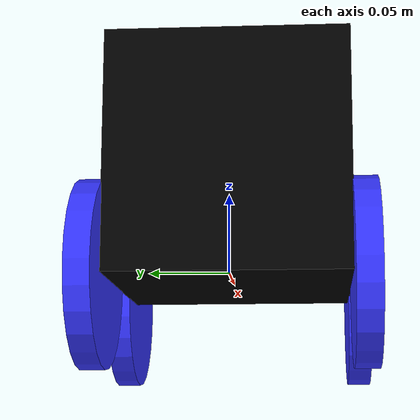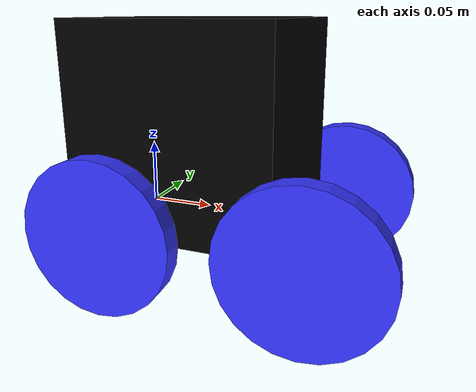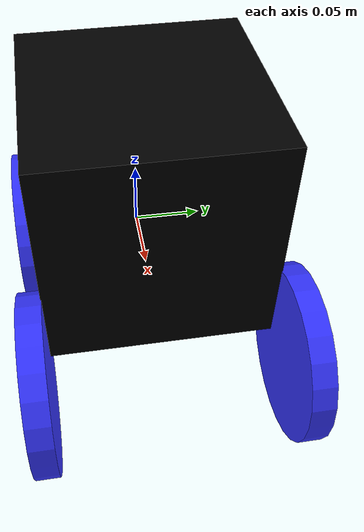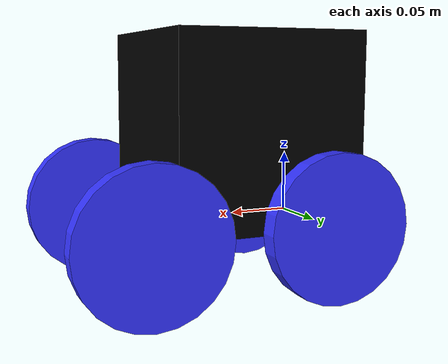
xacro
<?xml version="1.0"?>
<robot xmlns:xacro="http://www.ros.org/wiki/xacro">

    <xacro:include filename="inertial_macros.xacro"/>

    <material name="white">
        <color rgba="1 1 1 1"/>
    </material>

    <material name="orange">
        <color rgba="1 0.3 0.1 1"/>
    </material>

    <material name="blue">
        <color rgba="0.2 0.2 1 1"/>
    </material>

    <material name="black">
        <color rgba="0 0 0 1"/>
    </material>

<!-- BASE LINK -->

    <link name="base_link">

    </link>

<!-- CHASSIS LINK -->

    <joint name="chassis_joint" type="fixed">
        <parent link="base_link"/>
        <child link="chassis"/>
        <origin xyz="0.05 0 0"/>
    </joint>

    <link name="chassis">
        <visual>
            <origin xyz="0 0 0.075"/>
            <geometry>
                <box size="0.155 0.155 0.155"/>
            </geometry>
            <material name="black"/>
        </visual>
        <collision>
            <origin xyz="0 0 0.075"/>
            <geometry>
                <box size="0.155 0.155 0.155"/>
            </geometry>
        </collision>
        <xacro:inertial_box mass="0.5" x="0.3" y="0.3" z="0.15">
            <origin xyz="0.15 0 0.075" rpy="0 0 0"/>
        </xacro:inertial_box>
    </link>

    <!-- LEFT DRIVE WHEEL LINK -->

    <joint name="left_drive_wheel_joint" type="continuous">
        <parent link="base_link"/>
        <child link="left_drive_wheel"/>
        <origin xyz="0 0.085 0" rpy="-${pi/2} 0 0"/>
        <axis xyz="0 0 1"/>
    </joint>

    <link name="left_drive_wheel">
        <visual>
            <geometry>
                <cylinder radius="0.06" length="0.016"/>
            </geometry>
            <material name="blue"/>
        </visual>
        <collision>
            <geometry>
                <cylinder radius="0.06" length="0.016"/>
            </geometry>
        </collision>
        <xacro:inertial_cylinder mass="0.1" length="0.016" radius="0.06">
            <origin xyz="0 0 0" rpy="0 0 0"/>
        </xacro:inertial_cylinder>
    </link>

    <!-- RIGHT DRIVE WHEEL LINK-->

    <joint name="right_drive_wheel_joint" type="continuous">
        <parent link="base_link"/>
        <child link="right_drive_wheel"/>
        <origin xyz="0 -0.085 0" rpy="${pi/2} 0 0"/>
        <axis xyz="0 0 -1"/>
    </joint>

    <link name="right_drive_wheel">
        <visual>
            <geometry>
                <cylinder radius="0.06" length="0.016"/>
            </geometry>
            <material name="blue"/>
        </visual>
        <collision>
            <geometry>
                <cylinder radius="0.06" length="0.016"/>
            </geometry>
        </collision>
        <xacro:inertial_cylinder mass="0.1" length="0.016" radius="0.06">
            <origin xyz="0 0 0" rpy="0 0 0"/>
        </xacro:inertial_cylinder>
    </link>

     <!-- LEFT FRONT WHEEL LINK -->

    <joint name="left_front_wheel_joint" type="continuous">
        <parent link="base_link"/>
        <child link="left_front_wheel"/>
        <origin xyz="0.15 0.085 0" rpy="-${pi/2} 0 0"/>
        <axis xyz="0 0 1"/>
    </joint>

    <link name="left_front_wheel">
        <visual>
            <geometry>
                <cylinder radius="0.06" length="0.016"/>
            </geometry>
            <material name="blue"/>
        </visual>
        <collision>
            <geometry>
                <cylinder radius="0.06" length="0.016"/>
            </geometry>
        </collision>
        <xacro:inertial_cylinder mass="0.1" length="0.016" radius="0.06">
            <origin xyz="0 0 0" rpy="0 0 0"/>
        </xacro:inertial_cylinder>
    </link>

    <gazebo reference="left_front_wheel">
        <mu1 value="0.0001"/>
        <mu2 value="0.0001"/>
    </gazebo>

    <!-- RIGHT FRONT WHEEL LINK-->

    <joint name="right_front_wheel_joint" type="continuous">
        <parent link="base_link"/>
        <child link="right_front_wheel"/>
        <origin xyz="0.15 -0.085 0" rpy="${pi/2} 0 0"/>
        <axis xyz="0 0 -1"/>
    </joint>

    <link name="right_front_wheel">
        <visual>
            <geometry>
                <cylinder radius="0.06" length="0.016"/>
            </geometry>
            <material name="blue"/>
        </visual>
        <collision>
            <geometry>
                <cylinder radius="0.06" length="0.016"/>
            </geometry>
        </collision>
        <xacro:inertial_cylinder mass="0.1" length="0.016" radius="0.06">
            <origin xyz="0 0 0" rpy="0 0 0"/>
        </xacro:inertial_cylinder>
    </link>

     <gazebo reference="right_front_wheel">
        <mu1 value="0.0001"/>
        <mu2 value="0.0001"/>
    </gazebo>

</robot>
